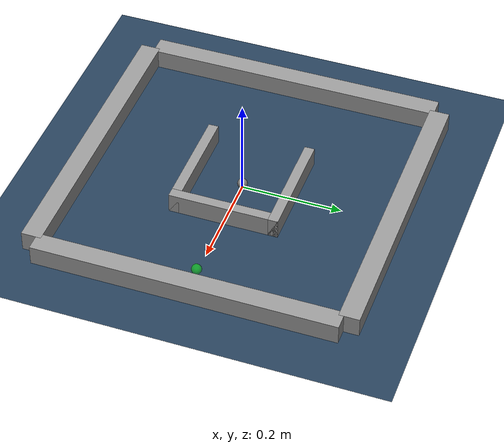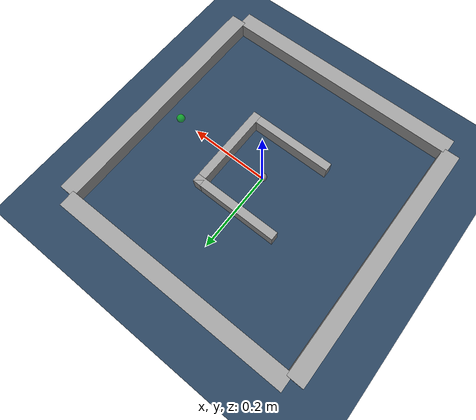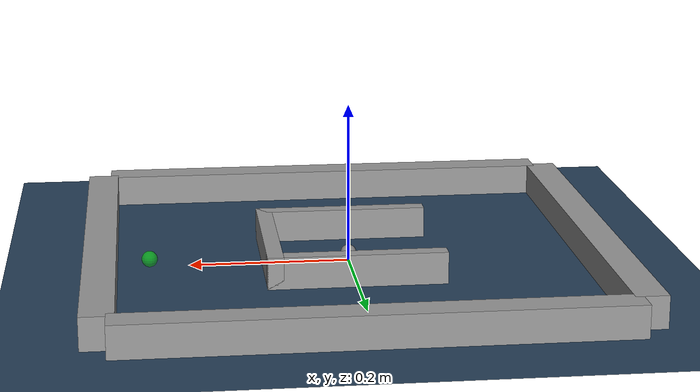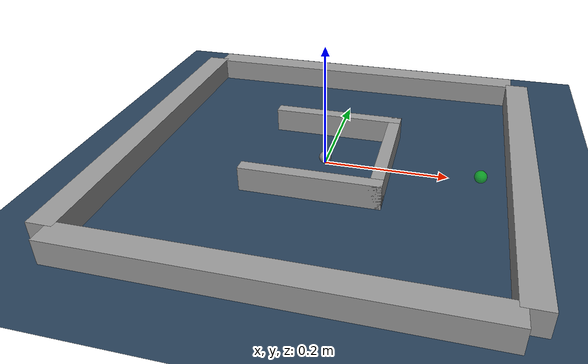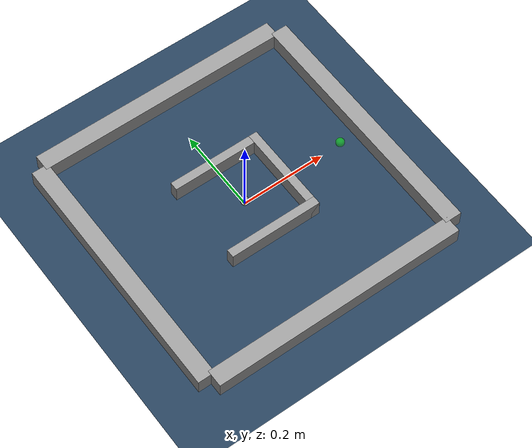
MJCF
<mujoco model="particle_scene">
  <!-- Model that includes like lighting and a ground. -->
  <include file="particle.xml"/>

  <statistic center="0 0 0" extent="0.9"/>

  <visual>
    <headlight diffuse="0.6 0.6 0.6" ambient="0.3 0.3 0.3" specular="0 0 0"/>
    <rgba haze="0.15 0.25 0.35 1"/>
    <global offwidth="720" offheight="480"/>
  </visual>

  <asset>
    <texture type="skybox" builtin="gradient" rgb1="0.3 0.5 0.7" rgb2="0 0 0" width="512" height="3072"/>
    <texture type="2d" name="groundplane" builtin="checker" mark="edge" rgb1="0.2 0.3 0.4" rgb2="0.1 0.2 0.3"
      markrgb="0.8 0.8 0.8" width="300" height="300"/>
    <material name="groundplane" texture="groundplane" texuniform="true" texrepeat="5 5" reflectance="0.2"/>
  </asset>

  <worldbody>
    <light pos="0 0 1"/>
    <geom name="floor" size="0 0 .125" type="plane" material="groundplane"/>
  </worldbody>

</mujoco>

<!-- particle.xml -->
<mujoco model="particle">
  <!-- Adopted from the MJPC particle task:
    https://github.com/google-deepmind/mujoco_mpc/tree/main/mjpc/tasks/particle
  -->
  <option timestep="0.01" iterations="2" ls_iterations="6">
    <flag eulerdamp="disable"/>
  </option>

  <default>
    <joint type="hinge" axis="0 0 1" limited="true" range="-.29 .29" damping="1" />
    <motor gear=".1" ctrlrange="-1 1" ctrllimited="true" />
    <default class="wall">
      <geom type="box" contype="2" conaffinity="1" rgba="0.6 0.6 0.6 1"
            friction="0.1 0.005 0.0001" solref="0.005 1" solimp="0.95 0.99 0.001"/>
    </default>
  </default>

  <worldbody>
    <body name="goal" mocap="true" pos="0.25 0 0.01" quat="1 0 0 0">
      <geom type="sphere" size=".01" contype="0" conaffinity="0" rgba="0 1 0 .5" />
    </body>

    <camera name="top_view" pos="0 -0.635 0.635" xyaxes="1 0 0 0 0.7 0.7" />
    <geom name="wall_x"     class="wall" pos="-.31  0   .02" size=".02 .3  .02" />
    <geom name="wall_neg_x" class="wall" pos=" .31  0   .02" size=".02 .3  .02" />
    <geom name="wall_y"     class="wall" pos=" 0  -.31  .02" size=".3  .02 .02" />
    <geom name="wall_neg_y" class="wall" pos=" 0   .31  .02" size=".3  .02 .02" />

    <geom name="wall_ix"     class="wall" pos=" .1  0   .02" size=".01 .11 .02" />
    <geom name="wall_iy"     class="wall" pos=" 0  -.1  .02" size=".11 .01 .02" />
    <geom name="wall_neg_iy" class="wall" pos=" 0   .1  .02" size=".11 .01 .02" />

    <body name="pointmass" pos="0 0 .01">
      <camera name="cam0" pos="0 -0.635 0.635" xyaxes="1 0 0 0 0.7 0.7" />
      <joint name="root_x" type="slide" pos="0 0 0" axis="1 0 0" />
      <joint name="root_y" type="slide" pos="0 0 0" axis="0 1 0" />
      <geom name="pointmass" type="sphere" size=".01" mass=".3"
            contype="1" conaffinity="2"
            friction="0.1 0.005 0.0001" solref="0.005 1" solimp="0.95 0.99 0.001"/>
      <site name="pointmass" pos="0 0 0" size="0.01" />
    </body>
  </worldbody>

  <actuator>
    <motor name="x_motor" joint="root_x" gear="1" ctrllimited="true" ctrlrange="-1 1" />
    <motor name="y_motor" joint="root_y" gear="1" ctrllimited="true" ctrlrange="-1 1" />
  </actuator>
</mujoco>
